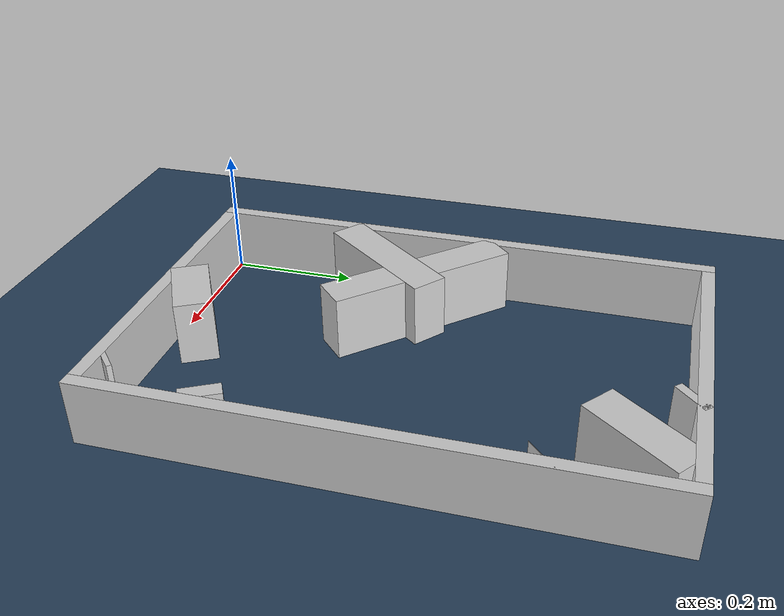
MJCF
<?xml version="1.0" ?>
<mujoco model="generated_real_template">
  <compiler angle="degree"/>
  <option timestep="0.002" integrator="implicitfast" iterations="100" cone="elliptic"/>
  <default>
    <geom density="1"/>
  </default>
  <asset>
    <texture builtin="gradient" height="3072" rgb1="0.3 0.5 0.7" rgb2="0 0 0" type="skybox" width="512"/>
    <texture builtin="checker" height="300" mark="edge" markrgb="0.8 0.8 0.8" name="groundplane" rgb1="0.2 0.3 0.4" rgb2="0.1 0.2 0.3" type="2d" width="300"/>
    <material name="groundplane" reflectance="0.2" texrepeat="5 5" texture="groundplane" texuniform="true"/>
  </asset>
  <worldbody>
    <light dir="0 0 -1" directional="true" pos="0 0 1.5"/>
    <geom name="floor" type="plane" condim="4" friction="0.5 0.005 0.001" material="groundplane" size="0 0 0.05"/>
    <body name="walls">
      <geom name="wall_boundary_left" type="box" condim="4" friction="1.0 0.005 0.0001" rgba="0.8 0.8 0.8 1" pos="-0.010000 0.387500 0.050000" euler="0 0 0.000000" size="0.010000 0.407500 0.050000"/>
      <geom name="wall_boundary_right" type="box" condim="4" friction="1.0 0.005 0.0001" rgba="0.8 0.8 0.8 1" pos="0.500000 0.387500 0.050000" euler="0 0 0.000000" size="0.010000 0.407500 0.050000"/>
      <geom name="wall_boundary_bottom" type="box" condim="4" friction="1.0 0.005 0.0001" rgba="0.8 0.8 0.8 1" pos="0.245000 -0.010000 0.050000" euler="0 0 0.000000" size="0.245000 0.010000 0.050000"/>
      <geom name="wall_boundary_top" type="box" condim="4" friction="1.0 0.005 0.0001" rgba="0.8 0.8 0.8 1" pos="0.245000 0.785000 0.050000" euler="0 0 0.000000" size="0.245000 0.010000 0.050000"/>
      <geom name="wall_inner_1_1" type="box" condim="4" friction="1.0 0.005 0.0001" rgba="0.8 0.8 0.8 1" pos="0.240526 0.032893 0.050000" euler="0 0 28.547751" size="0.058291 0.028500 0.050000"/>
      <geom name="wall_inner_1_2" type="box" condim="4" friction="1.0 0.005 0.0001" rgba="0.8 0.8 0.8 1" pos="0.479738 0.163032 0.050000" euler="0 0 28.547751" size="0.011683 0.028500 0.050000"/>
      <geom name="wall_inner_2_1" type="box" condim="4" friction="1.0 0.005 0.0001" rgba="0.8 0.8 0.8 1" pos="0.105314 0.348686 0.050000" euler="0 0 -45.989196" size="0.150858 0.028500 0.050000"/>
      <geom name="wall_inner_2_2" type="box" condim="4" friction="1.0 0.005 0.0001" rgba="0.8 0.8 0.8 1" pos="0.439575 0.002679 0.050000" euler="0 0 -45.989196" size="0.003726 0.028500 0.050000"/>
      <geom name="wall_inner_3_1" type="box" condim="4" friction="1.0 0.005 0.0001" rgba="0.8 0.8 0.8 1" pos="0.489184 0.602481 0.050000" euler="0 0 133.598640" size="0.000254 0.028500 0.050000"/>
      <geom name="wall_inner_3_2" type="box" condim="4" friction="1.0 0.005 0.0001" rgba="0.8 0.8 0.8 1" pos="0.329516 0.770157 0.050000" euler="0 0 133.598640" size="0.006687 0.028500 0.050000"/>
      <geom name="wall_inner_4_1" type="box" condim="4" friction="1.0 0.005 0.0001" rgba="0.8 0.8 0.8 1" pos="0.072989 0.290743 0.050000" euler="0 0 51.411010" size="0.113369 0.028500 0.050000"/>
      <geom name="wall_inner_4_2" type="box" condim="4" friction="1.0 0.005 0.0001" rgba="0.8 0.8 0.8 1" pos="0.410458 0.713649 0.050000" euler="0 0 51.411010" size="0.078490 0.028500 0.050000"/>
    </body>
  </worldbody>
</mujoco>
